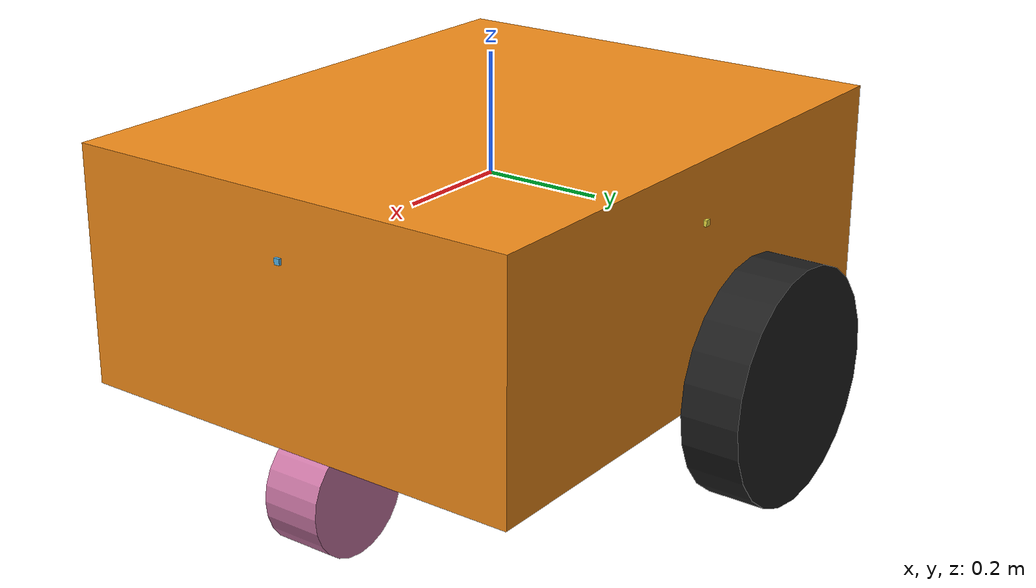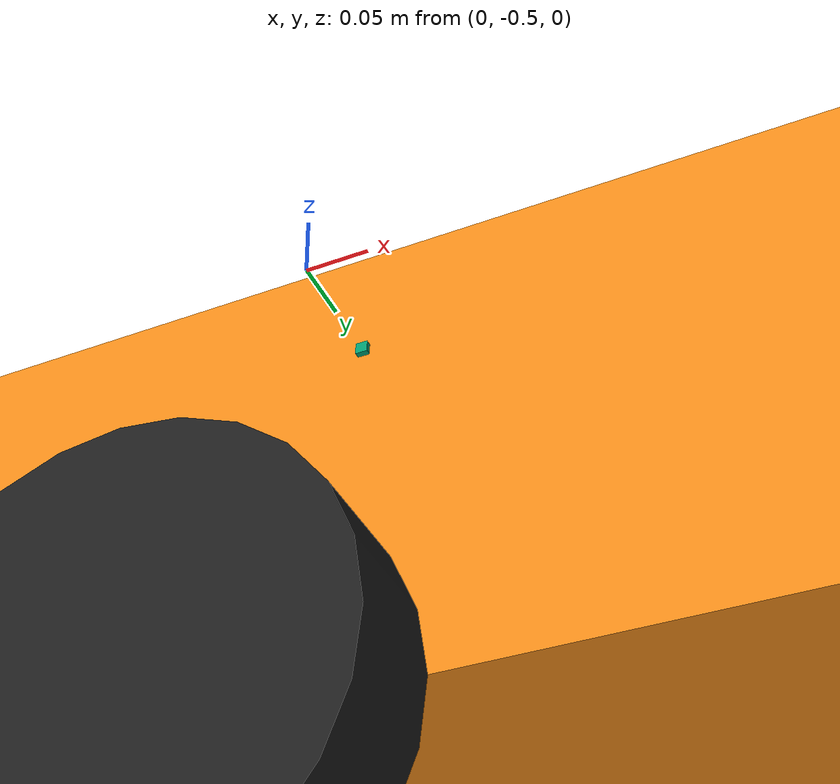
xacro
<?xml version="1.0"?>
<robot xmlns:xacro="http://www.ros.org/wiki/xacro" name="rob">

    <!-- Including plugins and material files -->
    <xacro:include filename="$(find mapper_robot_description)/urdf/materials.gazebo" />
    <xacro:include filename="$(find mapper_robot_description)/urdf/plugins.gazebo" />

    <!--  Chassis link -->
    <link name="base_link">
        <visual>
            <origin rpy="0  0  0" xyz="0 0 -0.1" />
            <geometry>
                <box size="1 0.8 0.4" />
            </geometry>
        </visual>
        <collision>
            <origin rpy="0 0 0" xyz="0 0 0" />
            <geometry>
                <box size="1 0.8 0.4" />
            </geometry>
        </collision>
        <inertial>
            <mass value="1" />
            <origin rpy="0  0  0" xyz="0  0  0" />
            <inertia ixx="0.166666666667" iyy="0.166666666667" izz="0.166666666667" ixy="0" ixz="0" iyz="0" />
        </inertial>
    </link>

    <!-- FRONT IR -->

    <joint name="ir_front_joint" type="fixed">
        <axis xyz="0 1 0" />
        <origin rpy="0 0 0" xyz="0.5 0 0" />
        <parent link="base_link" />
        <child link="base_ir_front" />
    </joint>

    <link name="base_ir_front">
        <collision>
            <origin xyz="0 0 0" rpy="0 0 0" />
            <geometry>
                <box size="0.01 0.01 0.01" />
            </geometry>
        </collision>
        <visual>
            <origin xyz="0 0 0" rpy="0 0 0" />
            <geometry>
                <box size="0.01 0.01 0.01" />
            </geometry>
        </visual>
        <inertial>
            <mass value="1e-5" />
            <origin xyz="0 0 0" rpy="0 0 0" />
            <inertia ixx="1e-6" ixy="0" ixz="0" iyy="1e-6" iyz="0" izz="1e-6" />
        </inertial>
    </link>

    <!-- LEFT IR -->

    <joint name="ir_left_joint" type="fixed">
        <axis xyz="0 1 0" />
        <origin rpy="0 0 -1.57079632679" xyz="0 -0.4 0" />
        <parent link="base_link" />
        <child link="base_ir_left" />
    </joint>

    <link name="base_ir_left">
        <collision>
            <origin xyz="0 0 0" rpy="0 0 0" />
            <geometry>
                <box size="0.01 0.01 0.01" />
            </geometry>
        </collision>
        <visual>
            <origin xyz="0 0 0" rpy="0 0 0" />
            <geometry>
                <box size="0.01 0.01 0.01" />
            </geometry>
        </visual>
        <inertial>
            <mass value="1e-5" />
            <origin xyz="0 0 0" rpy="0 0 0" />
            <inertia ixx="1e-6" ixy="0" ixz="0" iyy="1e-6" iyz="0" izz="1e-6" />
        </inertial>
    </link>

    <!-- Right IR -->

    <joint name="ir_right_joint" type="fixed">
        <axis xyz="0 1 0" />
        <origin rpy="0 0 1.57079632679" xyz="0 0.4 0" />
        <parent link="base_link" />
        <child link="base_ir_right" />
    </joint>

    <link name="base_ir_right">
        <collision>
            <origin xyz="0 0 0" rpy="0 0 0" />
            <geometry>
                <box size="0.01 0.01 0.01" />
            </geometry>
        </collision>
        <visual>
            <origin xyz="0 0 0" rpy="0 0 0" />
            <geometry>
                <box size="0.01 0.01 0.01" />
            </geometry>
        </visual>
        <inertial>
            <mass value="1e-5" />
            <origin xyz="0 0 0" rpy="0 0 0" />
            <inertia ixx="1e-6" ixy="0" ixz="0" iyy="1e-6" iyz="0" izz="1e-6" />
        </inertial>
    </link>

    <!-- Wheel link macro -->
    <xacro:macro name="wheels" params="name">
        <link name="${name}">
            <inertial>
                <mass value="0.01" />
                <origin xyz="0 0 0" rpy="0 0 0" />
                <inertia ixx="0.01" ixy="0.0" ixz="0.0" iyy="0.01" iyz="0.0" izz="0.01" />
            </inertial>
            <visual>
                <origin xyz="0 0 0" rpy="0 0 0" />
                <geometry>
                    <cylinder radius="0.2" length="0.1" />
                </geometry>
            </visual>
            <collision>
                <origin xyz="0 0 0" rpy="0 0 0" />
                <geometry>
                    <cylinder radius="0.2" length="0.1" />
                </geometry>
            </collision>
        </link>
    </xacro:macro>
    <!-- Wheels -->
    <xacro:wheels name="f_right" />
    <xacro:wheels name="f_left" />

    <!-- Wheel joints macro -->
    <xacro:macro name="wheel_joints" params="num link x y">
        <joint name="j_s${num}" type="continuous">
            <parent link="base_link" />
            <child link="${link}" />
            <origin xyz="${x} ${y} -0.3" rpy="1.5708 0 0" />
            <axis xyz="0 0 0.4" rpy="0 0 0" />
        </joint>
    </xacro:macro>
    <!-- Wheel joints -->
    <xacro:wheel_joints num="1" link="f_left" x="-0.15" y="0.45" />
    <xacro:wheel_joints num="2" link="f_right" x="-0.15" y="-0.45" />

    <!-- Caster -->

    <xacro:macro name="caster" params="name">
        <link name="${name}">
            <inertial>
                <mass value="0.5" />
                <origin xyz="0 0 0" rpy="0 0 0" />
                <inertia ixx="0.01" ixy="0.0" ixz="0.0" iyy="0.01" iyz="0.0" izz="0.01" />
            </inertial>
            <visual>
                <origin xyz="0 0 0" rpy="1.57079632679 0 0" />
                <geometry>
                    <cylinder radius="0.1" length="0.1" />
                </geometry>
            </visual>
            <collision>
                <origin xyz="0 0 0" rpy="1.57079632679 0 0" />
                <geometry>
                    <cylinder radius="0.1" length="0.1" />
                </geometry>
            </collision>
        </link>
    </xacro:macro>

    <xacro:caster name="caster_wheel" />

    <joint name="caster_wheel_joint" type="continuous">
        <axis xyz="0 1 0" rpy="0 0 0" />
        <parent link="base_link" />
        <child link="caster_wheel" />
        <origin xyz="0.4 0 -0.4" rpy="0 0 0" />
    </joint>

    <!-- Camera Link -->
    <!-- Camera joint -->

    <!-- Hokuyo Laser Link -->
    <!-- Laser joint -->

</robot>
